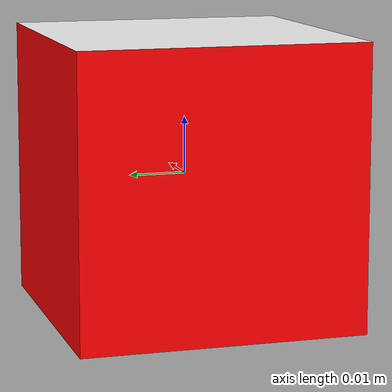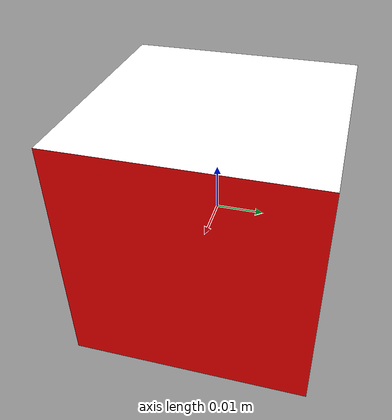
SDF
<?xml version='1.0'?>
<sdf version='1.7'>
  <model name='cube_with_marker'>
    <!-- Cube (collision + visual) -->
    <link name='cube_link'>
      <pose>0 0 0 0 0 0</pose>
      <inertial>
        <mass>1</mass>
        <inertia>
          <ixx>0.166667</ixx>
          <ixy>0</ixy>
          <ixz>0</ixz>
          <iyy>0.166667</iyy>
          <iyz>0</iyz>
          <izz>0.166667</izz>
        </inertia>
      </inertial>
      <visual name='cube_visual'>
        <geometry>
          <box>
            <size>0.05 0.05 0.05</size>
          </box>
        </geometry>
        <material>
          <lighting>1</lighting>
          <script>
            <uri>file://media/materials/scripts/gazebo.material</uri>
            <name>Gazebo/Grey</name>
          </script>
          <ambient>1 0 0 1</ambient>
          <diffuse>0.7 0.7 0.7 1</diffuse>
          <specular>0.01 0.01 0.01 1</specular>
          <emissive>0 0 0 1</emissive>
        </material>
      </visual>
      <collision name='cube_collision'>
        <geometry>
          <box>
            <size>0.05 0.05 0.05</size>
          </box>
        </geometry>
      </collision>
    </link>

    <!-- Aruco Marker (visual only) -->
    <link name='aruco_marker_link'>
      <!-- Position: top face of cube (half cube height) + half marker thickness -->
      <pose>0 0 0.025005 0 0 0</pose>
      <visual name='marker_visual'>
        <geometry>
          <box>
            <!-- Scale marker to match cube's top face -->
            <size>0.05 0.05 1e-5</size>
          </box>
        </geometry>
        <material>
          <script>
            <uri>model://aruco_marker/materials/scripts</uri>
            <uri>model://aruco_marker/materials/textures</uri>
            <name>ArucoMarker/Marker</name>
          </script>
          <ambient>1 1 1 1</ambient>
          <diffuse>1 1 1 1</diffuse>
          <specular>0 0 0 1</specular>
          <emissive>1 1 1 0</emissive>
        </material>
      </visual>
    </link>

    <!-- Fixed joint to attach marker to cube -->
    <joint name='marker_joint' type='fixed'>
      <parent>cube_link</parent>
      <child>aruco_marker_link</child>
    </joint>
  </model>
</sdf>
